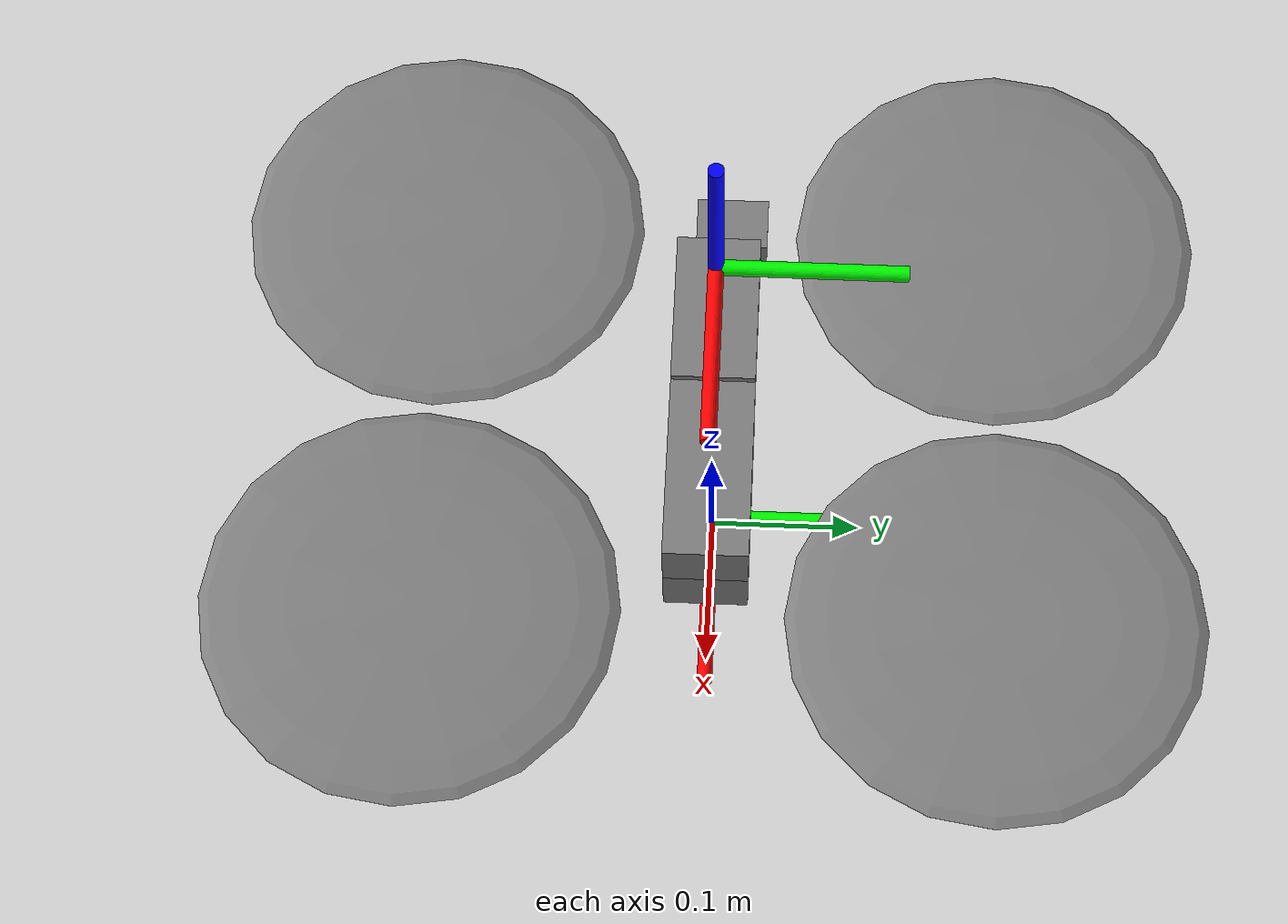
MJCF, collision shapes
<mujoco model="Skydio X2">
  <compiler autolimits="true" assetdir="assets"/>

  <option timestep="0.01" density="1.225" viscosity="1.8e-5"/>

  <default>
    <default class="x2">
      <geom mass="0"/>
      <motor ctrlrange="0 13"/>
      <mesh scale="0.01 0.01 0.01"/>
      <default class="visual">
        <geom group="2" type="mesh" contype="0" conaffinity="0"/>
      </default>
      <default class="collision">
        <geom group="3" type="box"/>
        <default class="rotor">
          <geom type="ellipsoid" size=".13 .13 .01"/>
        </default>
      </default>
      <site group="5"/>
    </default>
  </default>

  <asset>
    <texture type="2d" file="X2_lowpoly_texture_SpinningProps_1024.png"/>
    <material name="phong3SG" texture="X2_lowpoly_texture_SpinningProps_1024"/>
    <material name="invisible" rgba="0 0 0 0"/>

    <mesh class="x2" file="X2_lowpoly.obj"/>
  </asset>

  <worldbody>
  <body name="world_axes" pos="0 0 0.01">
      <geom type="cylinder" fromto="0 0 0  0.12 0 0" size="0.005" rgba="1 0 0 1" class="visual"/>
      <geom type="cylinder" fromto="0 0 0  0 0.12 0" size="0.005" rgba="0 1 0 1" class="visual"/>
      <geom type="cylinder" fromto="0 0 0  0 0 0.12" size="0.005" rgba="0 0 1 1" class="visual"/>
    </body>
    <light name="spotlight" mode="targetbodycom" target="x2" pos="0 -1 2"/>
    <body name="x2" pos="0 0 0.1" childclass="x2">
    <body name="body_axes" pos="-0.064 0 0.15">
        <geom type="cylinder" fromto="0 0 0  0.12 0 0" size="0.005" rgba="1 0 0 1" class="visual"/>
        <geom type="cylinder" fromto="0 0 0  0 0.12 0" size="0.005" rgba="0 1 0 1" class="visual"/>
        <geom type="cylinder" fromto="0 0 0  0 0 0.12" size="0.005" rgba="0 0 1 1" class="visual"/>
      </body>
      <freejoint/>
      <camera name="track" pos="-1 0 .5" xyaxes="0 -1 0 1 0 2" mode="trackcom"/>
      <site name="imu" pos="0 0 .02"/>
      <geom material="phong3SG" mesh="X2_lowpoly" class="visual" quat="0 0 1 1"/>
      <geom class="collision" size=".06 .027 .02" pos=".04 0 .02"/>
      <geom class="collision" size=".06 .027 .02" pos=".04 0 .06"/>
      <geom class="collision" size=".05 .027 .02" pos="-.07 0 .065"/>
      <geom class="collision" size=".023 .017 .01" pos="-.137 .008 .065" quat="1 0 0 1"/>
      <geom name="rotor1" class="rotor" pos="-.14 -.18 .05" mass=".25"/>
      <geom name="rotor2" class="rotor" pos="-.14 .18 .05" mass=".25"/>
      <geom name="rotor3" class="rotor" pos=".14 .18 .08" mass=".25"/>
      <geom name="rotor4" class="rotor" pos=".14 -.18 .08" mass=".25"/>
      <geom size=".16 .04 .02" pos="0 0 0.02" type="ellipsoid" mass=".325" class="visual" material="invisible"/>
      <site name="thrust1" pos="-.14 -.18 .05"/>
      <site name="thrust2" pos="-.14 .18 .05"/>
      <site name="thrust3" pos=".14 .18 .08"/>
      <site name="thrust4" pos=".14 -.18 .08"/>
    </body>
  </worldbody>

  <actuator>
    <motor class="x2" name="thrust1" site="thrust1" gear="0 0 1 0 0 -.0201"/>
    <motor class="x2" name="thrust2" site="thrust2" gear="0 0 1 0 0 .0201"/>
    <motor class="x2" name="thrust3" site="thrust3" gear="0 0 1 0 0 -.0201"/>
    <motor class="x2" name="thrust4" site="thrust4" gear="0 0 1 0 0 .0201"/>
  </actuator>

  <sensor>
    <gyro name="body_gyro" site="imu"/>
    <accelerometer name="body_linacc" site="imu"/>
    <framequat name="body_quat" objtype="site" objname="imu"/>
  </sensor>

  <keyframe>
    <key name="hover" qpos="0 0 .3 1 0 0 0" ctrl="3.2495625 3.2495625 3.2495625 3.2495625"/>
  </keyframe>
</mujoco>
